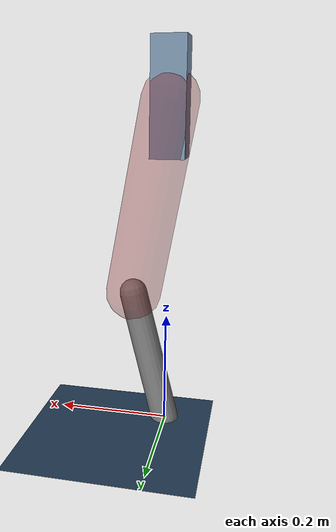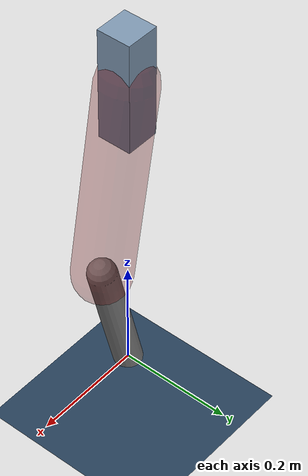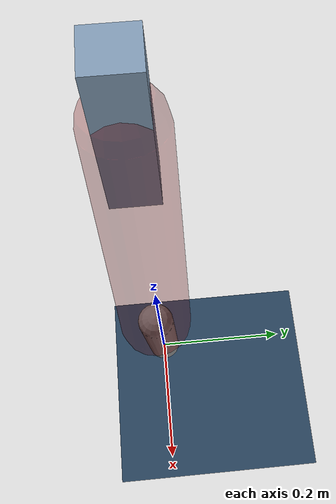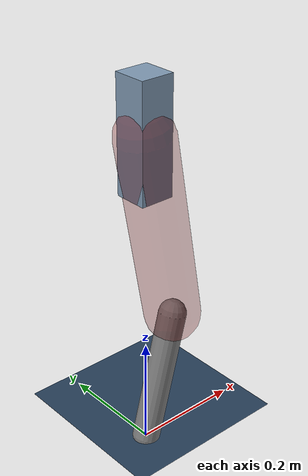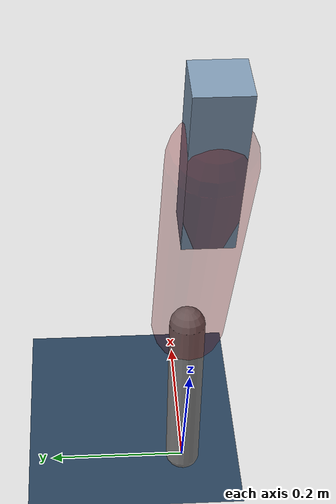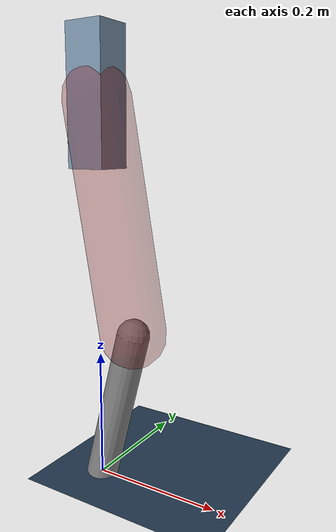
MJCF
<mujoco model="Hopper2D">
	<compiler inertiafromgeom="true" angle="radian" />
	<option timestep="0.001" integrator="implicit" cone="elliptic" solver="Newton" tolerance="1e-10" />

	<default>
		<geom contype="1" conaffinity="1" condim="3" friction="2 0.005 0.0001" solref="0.005 1" />
		<joint limited="true" damping="0.1" />
	</default>

	<asset>
		<texture name="skybox" type="skybox" builtin="gradient" rgb1=".4 .6 .8" rgb2="0 0 0" width="800" height="800" />
		<texture name="grid" type="2d" builtin="checker" rgb1=".1 .2 .3" rgb2=".2 .3 .4" width="300" height="300" mark="edge" markrgb=".2 .3 .4" />
		<material name="ground" texture="grid" texrepeat="1 1" texuniform="true" reflectance="0.1" />
		<material name="leg" rgba="0.5 0.6 0.7 1" />
	</asset>

	<worldbody>

		<geom name="floor" type="plane" size="5 5 0.25" material="ground" />

		<light directional="false" diffuse="0.8 0.8 0.8" specular="0.3 0.3 0.3" pos="0 0 2" dir="0 0 -1" />
		<light mode="targetbodycom" target="base" directional="false" diffuse="0.8 0.8 0.8" specular="0.3 0.3 0.3" pos="0 0 2" dir="0 0 -1" />

		<camera name="fixed" pos="0 -2 1" xyaxes="1 0 0 0 0 1" />
		<camera name="tracking" mode="trackcom" pos="0 -3 1" />

		<body name="root" pos="0 0 0.5856895312259875">
			<joint name="slide_x" type="slide" axis="1 0 0" range="-100 100" />
			<joint name="slide_z" type="slide" axis="0 0 1" range="0 10" />

			<body name="base" pos="0 0 0">
				<geom name="torso" type="box" size="0.03 0.03 0.1" mass="3.16" material="leg" />

				<body name="link1" pos="0 0 0" euler="0 1.3939881217799441 0">
					<joint type="hinge" axis="0 -1 0" pos="0 0 0" name="hinge1" limited="true" range="-3.14 3.14" stiffness="0" damping="0.1" />
					<geom name="thigh" type="capsule" fromto="0 0 0 0.3494973738893537 0 0" size="0.05" rgba="0.5 0 0 0.3" mass="1.1252926468901905" />

					<body name="link2" pos="0.3494973738893537 0 0" euler="0 0.42592036494039187 0">
						<joint type="hinge" axis="0 -1 0" pos="0 0 0" name="hinge2" limited="true" range="-3.14 3.14" stiffness="0" damping="0.1" />
						<geom name="shank" type="capsule" fromto="0 0 0 0.24933740749012245 0 0" size="0.025" mass="0.44196992599209795" />

					</body>
				</body>
			</body>
		</body>
	</worldbody>

	<actuator>
		<motor name="torque1" joint="hinge1" ctrlrange="-32.52814504509714 32.52814504509714" ctrllimited="true" gear="1" />
		<motor name="torque2" joint="hinge2" ctrlrange="-218.08180789111503 218.08180789111503" ctrllimited="true" gear="1" />
	</actuator>
</mujoco>
